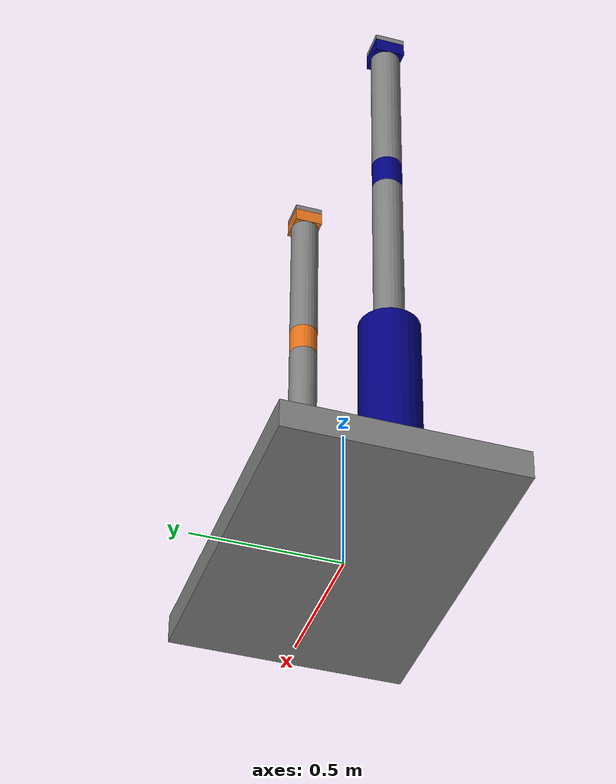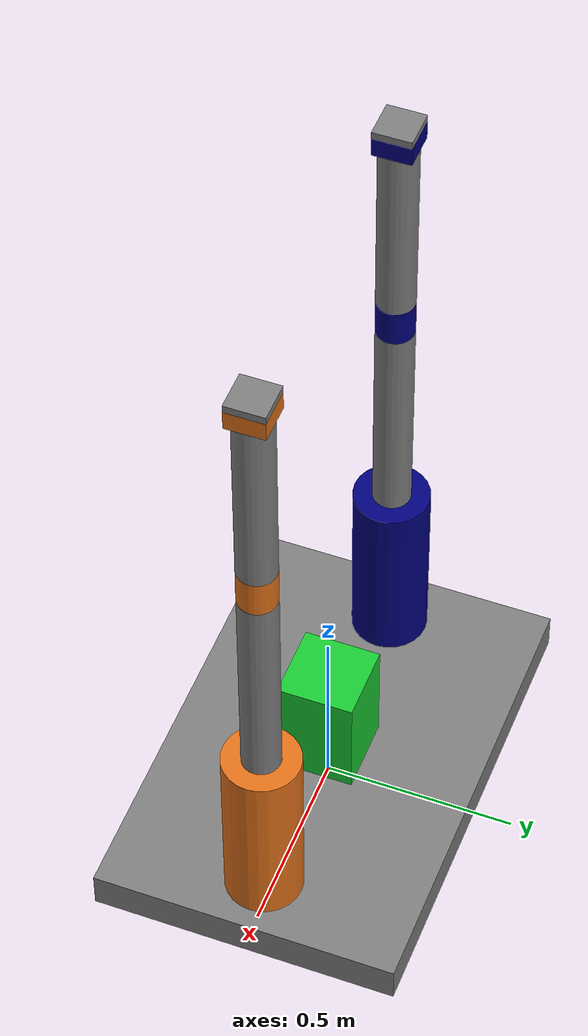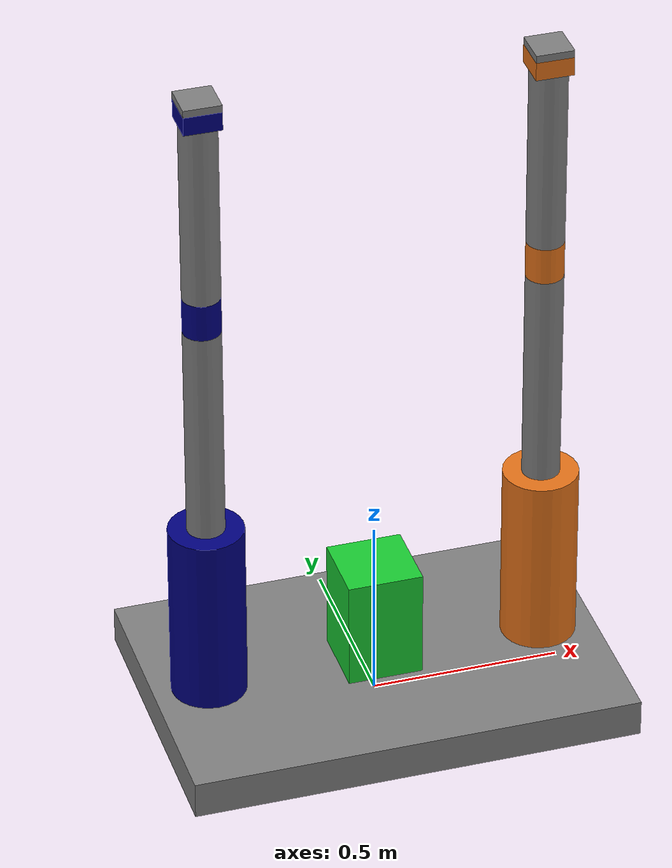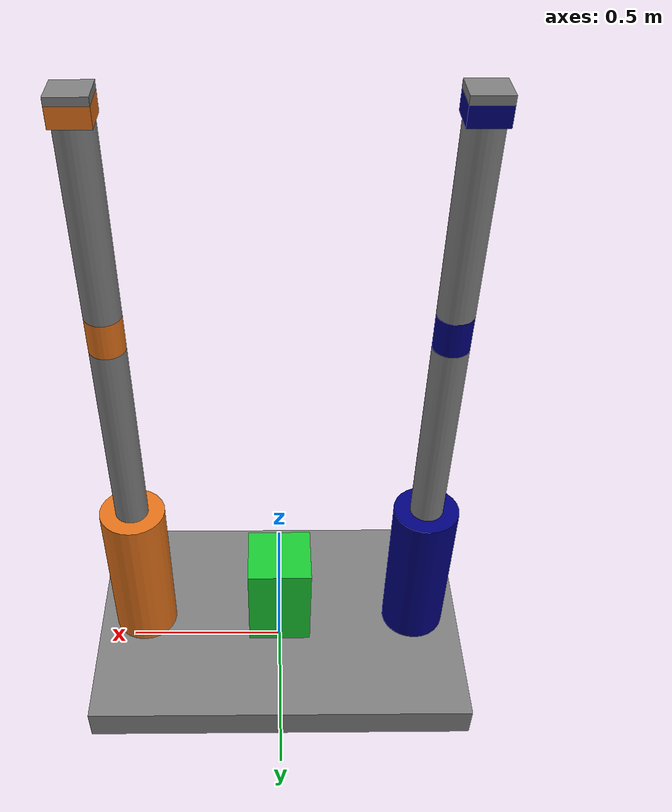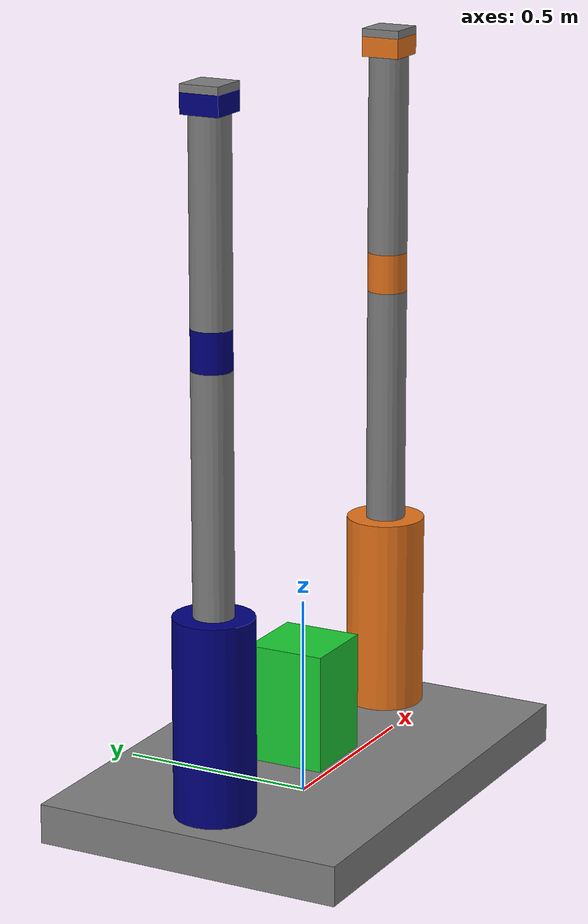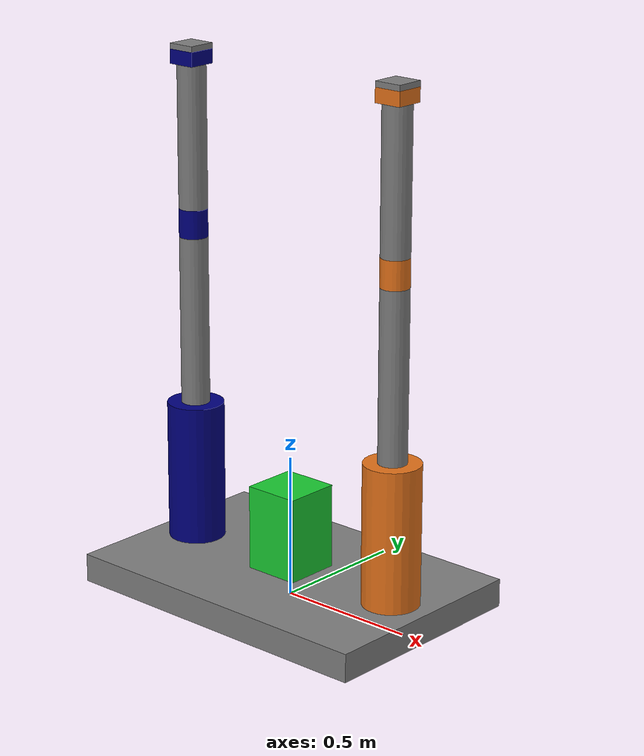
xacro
<?xml version="1.0"?>
<robot name="my_robot" xmlns:xacro="http://www.ros.org/wiki/xacro">

    <xacro:include filename="common_properties.xacro" />
    <xacro:include filename="arm.xacro" />
    <xacro:include filename="ros2_control.xacro" />

    <link name="base_link">
        <visual>
            <geometry>
                <box size="1.2 0.8 0.1" />
            </geometry>
            <origin xyz="0 0 0.05" rpy="0 0 0" />
            <material name="grey" />
        </visual>
        <collision>
            <geometry>
                <box size="1.2 0.8 0.1" />
            </geometry>
            <origin xyz="0 0 0.05" rpy="0 0 0" />
        </collision>
    </link>

    <link name="obstacle_box_link">
        <visual>
            <geometry>
                <box size="0.2 0.2 0.3" />
            </geometry>
            <origin xyz="0 0 0.15" rpy="0 0 0" />
            <material name="green" />
        </visual>
        <collision>
            <geometry>
                <box size="0.2 0.2 0.3" />
            </geometry>
            <origin xyz="0 0 0.15" rpy="0 0 0" />
        </collision>
    </link>

    <joint name="obstacle_box_joint" type="fixed">
        <parent link="base_link" />
        <child link="obstacle_box_link" />
        <origin xyz="0 0 0.1" rpy="0 0 0" />
    </joint>

    <xacro:robot_arm prefix="left_" parent="base_link" arm_color="blue">
        <origin xyz="-0.45 0 0.1" rpy="0 0 1.5708" />
    </xacro:robot_arm>

    <xacro:robot_arm prefix="right_" parent="base_link" arm_color="orange">
        <origin xyz="0.45 0 0.1" rpy="0 0 -1.5708" />
    </xacro:robot_arm>

</robot>

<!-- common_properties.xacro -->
<robot xmlns:xacro="http://www.ros.org/wiki/xacro">

    <material name="grey">
        <color rgba="0.5 0.5 0.5 1" />
    </material>

    <material name="blue">
        <color rgba="0 0 0.5 1" />
    </material>

    <material name="orange">
        <color rgba="0.9 0.45 0.1 1" />
    </material>

    <material name="green">
        <color rgba="0.1 0.8 0.2 1" />
    </material>

</robot>

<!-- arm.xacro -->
<robot xmlns:xacro="http://www.ros.org/wiki/xacro">

    <xacro:macro name="robot_arm" params="prefix parent *origin arm_color:=blue">
        <link name="${prefix}shoulder_link">
            <visual>
                <geometry>
                    <cylinder length="0.5" radius="0.1" />
                </geometry>
                <origin xyz="0 0 0.25" rpy="0 0 0" />
                <material name="${arm_color}" />
            </visual>
            <collision>
                <geometry>
                    <cylinder length="0.5" radius="0.1" />
                </geometry>
                <origin xyz="0 0 0.25" rpy="0 0 0" />
            </collision>
        </link>

        <link name="${prefix}arm_link">
            <visual>
                <geometry>
                    <cylinder length="0.6" radius="0.05" />
                </geometry>
                <origin xyz="0 0 0.3" rpy="0 0 0" />
                <material name="grey" />
            </visual>
            <collision>
                <geometry>
                    <cylinder length="0.6" radius="0.05" />
                </geometry>
                <origin xyz="0 0 0.3" rpy="0 0 0" />
            </collision>
        </link>

        <link name="${prefix}elbow_link">
            <visual>
                <geometry>
                    <cylinder length="0.1" radius="0.05" />
                </geometry>
                <origin xyz="0 0 0.05" rpy="0 0 0" />
                <material name="${arm_color}" />
            </visual>
            <collision>
                <geometry>
                    <cylinder length="0.1" radius="0.05" />
                </geometry>
                <origin xyz="0 0 0.05" rpy="0 0 0" />
            </collision>
        </link>

        <link name="${prefix}forearm_link">
            <visual>
                <geometry>
                    <cylinder length="0.5" radius="0.05" />
                </geometry>
                <origin xyz="0 0 0.25" rpy="0 0 0" />
                <material name="grey" />
            </visual>
            <collision>
                <geometry>
                    <cylinder length="0.5" radius="0.05" />
                </geometry>
                <origin xyz="0 0 0.25" rpy="0 0 0" />
            </collision>
        </link>

        <link name="${prefix}wrist_link">
            <visual>
                <geometry>
                    <box size="0.1 0.1 0.05" />
                </geometry>
                <origin xyz="0 0 0.025" rpy="0 0 0" />
                <material name="${arm_color}" />
            </visual>
            <collision>
                <geometry>
                    <box size="0.1 0.1 0.05" />
                </geometry>
                <origin xyz="0 0 0.025" rpy="0 0 0" />
            </collision>
        </link>

        <link name="${prefix}hand_link">
            <visual>
                <geometry>
                    <box size="0.1 0.1 0.02" />
                </geometry>
                <origin xyz="0 0 0.01" rpy="0 0 0" />
                <material name="grey" />
            </visual>
            <collision>
                <geometry>
                    <box size="0.1 0.1 0.02" />
                </geometry>
                <origin xyz="0 0 0.01" rpy="0 0 0" />
            </collision>
        </link>

        <link name="${prefix}tool_link" />

        <joint name="${prefix}joint1" type="revolute">
            <parent link="${parent}" />
            <child link="${prefix}shoulder_link" />
            <xacro:insert_block name="origin" />
            <axis xyz="0 0 1" />
            <limit effort="1000.0" velocity="1.0" lower="-3.14" upper="3.14" />
        </joint>

        <joint name="${prefix}joint2" type="revolute">
            <parent link="${prefix}shoulder_link" />
            <child link="${prefix}arm_link" />
            <origin xyz="0 0 0.5" rpy="0 0 0" />
            <axis xyz="0 1 0" />
            <limit effort="1000.0" velocity="1.0" lower="0" upper="2.5" />
        </joint>

        <joint name="${prefix}joint3" type="revolute">
            <parent link="${prefix}arm_link" />
            <child link="${prefix}elbow_link" />
            <origin xyz="0 0 0.6" rpy="0 0 0" />
            <axis xyz="0 1 0" />
            <limit effort="1000.0" velocity="1.0" lower="0" upper="2.5" />
        </joint>

        <joint name="${prefix}joint4" type="revolute">
            <parent link="${prefix}elbow_link" />
            <child link="${prefix}forearm_link" />
            <origin xyz="0 0 0.1" rpy="0 0 0" />
            <axis xyz="0 0 1" />
            <limit effort="1000.0" velocity="1.0" lower="-3.14" upper="3.14" />
        </joint>

        <joint name="${prefix}joint5" type="revolute">
            <parent link="${prefix}forearm_link" />
            <child link="${prefix}wrist_link" />
            <origin xyz="0 0 0.5" rpy="0 0 0" />
            <axis xyz="0 1 0" />
            <limit effort="1000.0" velocity="1.0" lower="-1.57" upper="1.57" />
        </joint>

        <joint name="${prefix}joint6" type="revolute">
            <parent link="${prefix}wrist_link" />
            <child link="${prefix}hand_link" />
            <origin xyz="0 0 0.05" rpy="0 0 0" />
            <axis xyz="0 0 1" />
            <limit effort="1000.0" velocity="1.0" lower="-3.14" upper="3.14" />
        </joint>

        <joint name="${prefix}hand_tool_joint" type="fixed">
            <parent link="${prefix}hand_link" />
            <child link="${prefix}tool_link" />
            <origin xyz="0 0 0.02" rpy="0 0 0" />
        </joint>
    </xacro:macro>

</robot>
